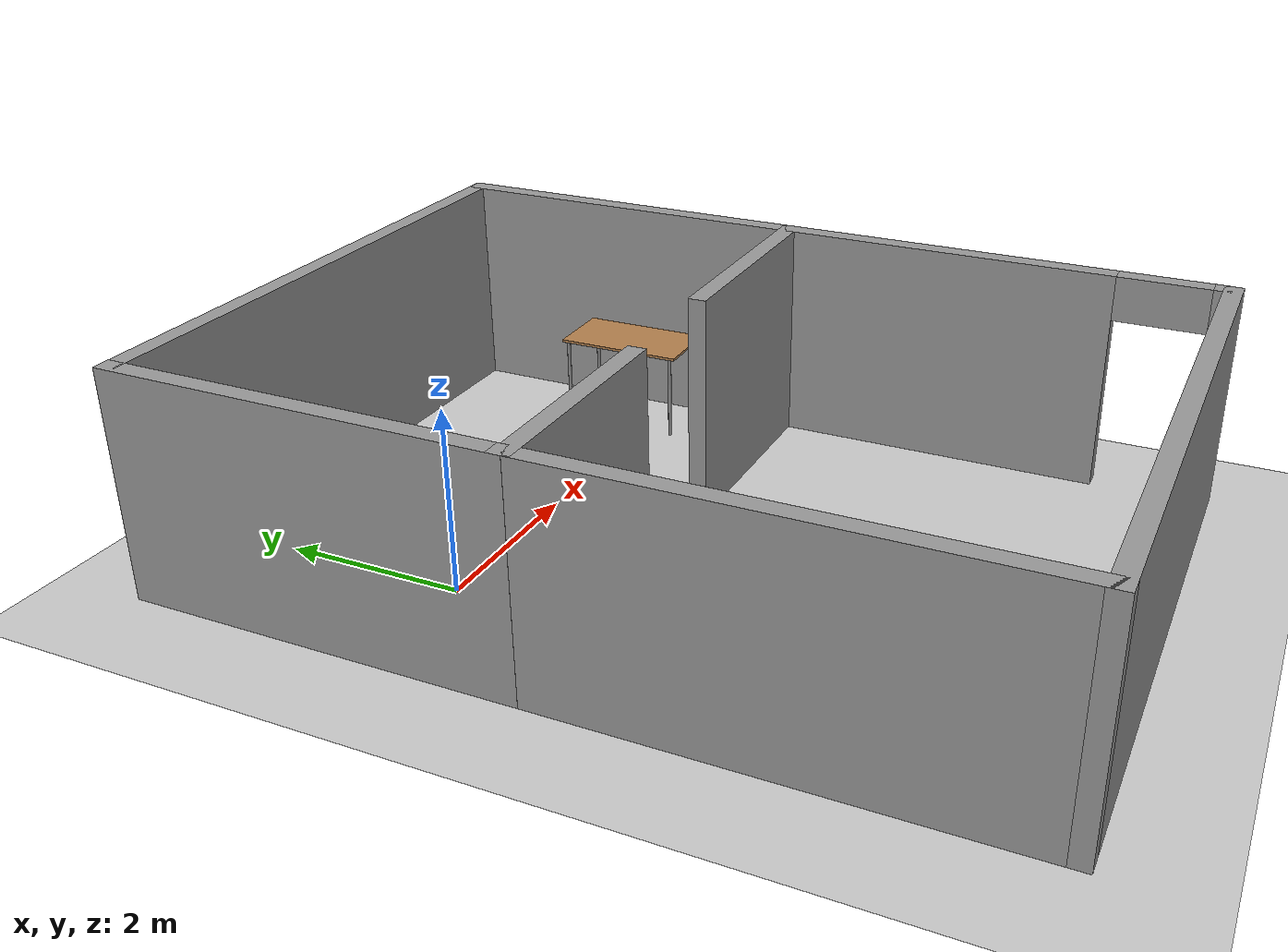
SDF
<sdf version="1.4">
 <world name="default">
  <model name="ground_plane">
   <static>1</static>
   <link name="link">
    <collision name="collision">
     <geometry><plane><normal>0 0 1</normal><size>100 100</size></plane></geometry>
     <surface><friction><ode><mu>100</mu><mu2>50</mu2></ode></friction></surface>
    </collision>
    <visual name="visual">
     <cast_shadows>0</cast_shadows>
     <geometry><plane><normal>0 0 1</normal><size>100 100</size></plane></geometry>
     <material>
      <script><uri>file://media/materials/scripts/gazebo.material</uri><name>Gazebo/Grey</name></script>
     </material>
    </visual>
    <velocity_decay><linear>0</linear><angular>0</angular></velocity_decay>
   </link>
  </model>
  <model name="upo.world">
   <link name="Wall_23">
    <pose>4.01723 -0.266341 0 0 -0 1.5708</pose>
    <visual name="Wall_23_Visual_0">
     <pose>-4.54348 0 1.25 0 -0 0</pose>
     <geometry><box><size>0.177799 0.2 2.5</size></box></geometry>
     <material>
      <script><uri>file://media/materials/scripts/gazebo.material</uri><name>Gazebo/Grey</name></script>
     </material>
    </visual>
    <collision name="Wall_23_Collision_0">
     <geometry><box><size>0.177799 0.2 2.5</size></box></geometry>
     <pose>-4.54348 0 1.25 0 -0 0</pose>
    </collision>
    <visual name="Wall_23_Visual_1">
     <pose>0.5889 0 1.25 0 -0 0</pose>
     <geometry><box><size>8.08695 0.2 2.5</size></box></geometry>
     <material>
      <script><uri>file://media/materials/scripts/gazebo.material</uri><name>Gazebo/Grey</name></script>
     </material>
    </visual>
    <collision name="Wall_23_Collision_1">
     <geometry><box><size>8.08695 0.2 2.5</size></box></geometry>
     <pose>0.5889 0 1.25 0 -0 0</pose>
    </collision>
    <visual name="Wall_23_Visual_2">
     <pose>-3.95458 0 2.25 0 -0 0</pose>
     <geometry><box><size>1 0.2 0.5</size></box></geometry>
     <material>
      <script><uri>file://media/materials/scripts/gazebo.material</uri><name>Gazebo/Grey</name></script>
     </material>
    </visual>
    <collision name="Wall_23_Collision_2">
     <geometry><box><size>1 0.2 0.5</size></box></geometry>
     <pose>-3.95458 0 2.25 0 -0 0</pose>
    </collision>
    <velocity_decay><linear>0</linear><angular>0</angular></velocity_decay>
   </link>
   <link name="Wall_27">
    <collision name="Wall_27_Collision">
     <geometry><box><size>2.64758 0.2 2.5</size></box></geometry>
     <pose>0 0 1.25 0 -0 0</pose>
    </collision>
    <visual name="Wall_27_Visual">
     <pose>0 0 1.25 0 -0 0</pose>
     <geometry><box><size>2.64758 0.2 2.5</size></box></geometry>
     <material>
      <script><uri>file://media/materials/scripts/gazebo.material</uri><name>Gazebo/Grey</name></script>
     </material>
    </visual>
    <velocity_decay><linear>0</linear><angular>0</angular></velocity_decay>
    <pose>2.76286 0.061184 0 0 -0 3.14159</pose>
   </link>
   <link name="Wall_31">
    <collision name="Wall_31_Collision">
     <geometry><box><size>6.55071 0.2 2.5</size></box></geometry>
     <pose>0 0 1.25 0 -0 0</pose>
    </collision>
    <visual name="Wall_31_Visual">
     <pose>0 0 1.25 0 -0 0</pose>
     <geometry><box><size>6.55071 0.2 2.5</size></box></geometry>
     <material>
      <script><uri>file://media/materials/scripts/gazebo.material</uri><name>Gazebo/Grey</name></script>
     </material>
    </visual>
    <velocity_decay><linear>0</linear><angular>0</angular></velocity_decay>
    <pose>0.836109 -4.91271 0 0 -0 3.14159</pose>
   </link>
   <link name="Wall_32">
    <collision name="Wall_32_Collision">
     <geometry><box><size>5.18636 0.2 2.5</size></box></geometry>
     <pose>0 0 1.25 0 -0 0</pose>
    </collision>
    <visual name="Wall_32_Visual">
     <pose>0 0 1.25 0 -0 0</pose>
     <geometry><box><size>5.18636 0.2 2.5</size></box></geometry>
     <material>
      <script><uri>file://media/materials/scripts/gazebo.material</uri><name>Gazebo/Grey</name></script>
     </material>
    </visual>
    <velocity_decay><linear>0</linear><angular>0</angular></velocity_decay>
    <pose>-2.33925 -2.41953 0 0 -0 1.5708</pose>
   </link>
   <link name="Wall_40">
    <collision name="Wall_40_Collision">
     <geometry><box><size>2.48229 0.2 2.5</size></box></geometry>
     <pose>0 0 1.25 0 -0 0</pose>
    </collision>
    <visual name="Wall_40_Visual">
     <pose>0 0 1.25 0 -0 0</pose>
     <geometry><box><size>2.48229 0.2 2.5</size></box></geometry>
     <material>
      <script><uri>file://media/materials/scripts/gazebo.material</uri><name>Gazebo/Grey</name></script>
     </material>
    </visual>
    <velocity_decay><linear>0</linear><angular>0</angular></velocity_decay>
    <pose>-1.18284 0.044501 0 0 -0 0</pose>
   </link>
   <link name="Wall_43">
    <collision name="Wall_43_Collision">
     <geometry><box><size>4.35525 0.2 2.5</size></box></geometry>
     <pose>0 0 1.25 0 -0 0</pose>
    </collision>
    <visual name="Wall_43_Visual">
     <pose>0 0 1.25 0 -0 0</pose>
     <geometry><box><size>4.35525 0.2 2.5</size></box></geometry>
     <material>
      <script><uri>file://media/materials/scripts/gazebo.material</uri><name>Gazebo/Grey</name></script>
     </material>
    </visual>
    <velocity_decay><linear>0</linear><angular>0</angular></velocity_decay>
    <pose>-2.33991 2.20081 0 0 -0 1.5708</pose>
   </link>
   <link name="Wall_45">
    <collision name="Wall_45_Collision">
     <geometry><box><size>6.4887 0.2 2.5</size></box></geometry>
     <pose>0 0 1.25 0 -0 0</pose>
    </collision>
    <visual name="Wall_45_Visual">
     <pose>0 0 1.25 0 -0 0</pose>
     <geometry><box><size>6.4887 0.2 2.5</size></box></geometry>
     <material>
      <script><uri>file://media/materials/scripts/gazebo.material</uri><name>Gazebo/Grey</name></script>
     </material>
    </visual>
    <velocity_decay><linear>0</linear><angular>0</angular></velocity_decay>
    <pose>0.85405 4.27844 0 0 -0 3.14159</pose>
   </link>
   <static>1</static>
   <pose>1 -1.5863 0 0 -0 0</pose>
  </model>
  <model name="table_0">
   <static>1</static>
   <link name="link">
    <collision name="surface">
     <pose>0 0 1 0 -0 0</pose>
     <geometry><box><size>1.5 0.8 0.03</size></box></geometry>
     <surface><friction><ode><mu>0.6</mu><mu2>0.6</mu2></ode></friction></surface>
    </collision>
    <visual name="visual1">
     <pose>0 0 1 0 -0 0</pose>
     <geometry><box><size>1.5 0.8 0.03</size></box></geometry>
     <material>
      <script><uri>file://media/materials/scripts/gazebo.material</uri><name>Gazebo/Wood</name></script>
     </material>
    </visual>
    <collision name="front_left_leg">
     <pose>0.68 0.38 0.5 0 -0 0</pose>
     <geometry><cylinder><radius>0.02</radius><length>1</length></cylinder></geometry>
    </collision>
    <visual name="front_left_leg">
     <pose>0.68 0.38 0.5 0 -0 0</pose>
     <geometry><cylinder><radius>0.02</radius><length>1</length></cylinder></geometry>
     <material>
      <script><uri>file://media/materials/scripts/gazebo.material</uri><name>Gazebo/Grey</name></script>
     </material>
    </visual>
    <collision name="front_right_leg">
     <pose>0.68 -0.38 0.5 0 -0 0</pose>
     <geometry><cylinder><radius>0.02</radius><length>1</length></cylinder></geometry>
    </collision>
    <visual name="front_right_leg">
     <pose>0.68 -0.38 0.5 0 -0 0</pose>
     <geometry><cylinder><radius>0.02</radius><length>1</length></cylinder></geometry>
     <material>
      <script><uri>file://media/materials/scripts/gazebo.material</uri><name>Gazebo/Grey</name></script>
     </material>
    </visual>
    <collision name="back_right_leg">
     <pose>-0.68 -0.38 0.5 0 -0 0</pose>
     <geometry><cylinder><radius>0.02</radius><length>1</length></cylinder></geometry>
    </collision>
    <visual name="back_right_leg">
     <pose>-0.68 -0.38 0.5 0 -0 0</pose>
     <geometry><cylinder><radius>0.02</radius><length>1</length></cylinder></geometry>
     <material>
      <script><uri>file://media/materials/scripts/gazebo.material</uri><name>Gazebo/Grey</name></script>
     </material>
    </visual>
    <collision name="back_left_leg">
     <pose>-0.68 0.38 0.5 0 -0 0</pose>
     <geometry><cylinder><radius>0.02</radius><length>1</length></cylinder></geometry>
    </collision>
    <visual name="back_left_leg">
     <pose>-0.68 0.38 0.5 0 -0 0</pose>
     <geometry><cylinder><radius>0.02</radius><length>1</length></cylinder></geometry>
     <material>
      <script><uri>file://media/materials/scripts/gazebo.material</uri><name>Gazebo/Grey</name></script>
     </material>
    </visual>
    <velocity_decay><linear>0</linear><angular>0</angular></velocity_decay>
   </link>
   <pose>-0.817184 0.212433 0 0 0 -1.56636</pose>
  </model>
  <model name="table_1">
   <static>1</static>
   <link name="link">
    <collision name="surface">
     <pose>0 0 1 0 -0 0</pose>
     <geometry><box><size>1.5 0.8 0.03</size></box></geometry>
     <surface><friction><ode><mu>0.6</mu><mu2>0.6</mu2></ode></friction></surface>
    </collision>
    <visual name="visual1">
     <pose>0 0 1 0 -0 0</pose>
     <geometry><box><size>1.5 0.8 0.03</size></box></geometry>
     <material>
      <script><uri>file://media/materials/scripts/gazebo.material</uri><name>Gazebo/Wood</name></script>
     </material>
    </visual>
    <collision name="front_left_leg">
     <pose>0.68 0.38 0.5 0 -0 0</pose>
     <geometry><cylinder><radius>0.02</radius><length>1</length></cylinder></geometry>
    </collision>
    <visual name="front_left_leg">
     <pose>0.68 0.38 0.5 0 -0 0</pose>
     <geometry><cylinder><radius>0.02</radius><length>1</length></cylinder></geometry>
     <material>
      <script><uri>file://media/materials/scripts/gazebo.material</uri><name>Gazebo/Grey</name></script>
     </material>
    </visual>
    <collision name="front_right_leg">
     <pose>0.68 -0.38 0.5 0 -0 0</pose>
     <geometry><cylinder><radius>0.02</radius><length>1</length></cylinder></geometry>
    </collision>
    <visual name="front_right_leg">
     <pose>0.68 -0.38 0.5 0 -0 0</pose>
     <geometry><cylinder><radius>0.02</radius><length>1</length></cylinder></geometry>
     <material>
      <script><uri>file://media/materials/scripts/gazebo.material</uri><name>Gazebo/Grey</name></script>
     </material>
    </visual>
    <collision name="back_right_leg">
     <pose>-0.68 -0.38 0.5 0 -0 0</pose>
     <geometry><cylinder><radius>0.02</radius><length>1</length></cylinder></geometry>
    </collision>
    <visual name="back_right_leg">
     <pose>-0.68 -0.38 0.5 0 -0 0</pose>
     <geometry><cylinder><radius>0.02</radius><length>1</length></cylinder></geometry>
     <material>
      <script><uri>file://media/materials/scripts/gazebo.material</uri><name>Gazebo/Grey</name></script>
     </material>
    </visual>
    <collision name="back_left_leg">
     <pose>-0.68 0.38 0.5 0 -0 0</pose>
     <geometry><cylinder><radius>0.02</radius><length>1</length></cylinder></geometry>
    </collision>
    <visual name="back_left_leg">
     <pose>-0.68 0.38 0.5 0 -0 0</pose>
     <geometry><cylinder><radius>0.02</radius><length>1</length></cylinder></geometry>
     <material>
      <script><uri>file://media/materials/scripts/gazebo.material</uri><name>Gazebo/Grey</name></script>
     </material>
    </visual>
    <velocity_decay><linear>0</linear><angular>0</angular></velocity_decay>
   </link>
   <pose>0.316779 0.957156 0 0 -0 0</pose>
  </model>
  <model name="table_4">
   <static>1</static>
   <link name="link">
    <collision name="surface">
     <pose>0 0 1 0 -0 0</pose>
     <geometry><box><size>1.5 0.8 0.03</size></box></geometry>
     <surface><friction><ode><mu>0.6</mu><mu2>0.6</mu2></ode></friction></surface>
    </collision>
    <visual name="visual1">
     <pose>0 0 1 0 -0 0</pose>
     <geometry><box><size>1.5 0.8 0.03</size></box></geometry>
     <material>
      <script><uri>file://media/materials/scripts/gazebo.material</uri><name>Gazebo/Wood</name></script>
     </material>
    </visual>
    <collision name="front_left_leg">
     <pose>0.68 0.38 0.5 0 -0 0</pose>
     <geometry><cylinder><radius>0.02</radius><length>1</length></cylinder></geometry>
    </collision>
    <visual name="front_left_leg">
     <pose>0.68 0.38 0.5 0 -0 0</pose>
     <geometry><cylinder><radius>0.02</radius><length>1</length></cylinder></geometry>
     <material>
      <script><uri>file://media/materials/scripts/gazebo.material</uri><name>Gazebo/Grey</name></script>
     </material>
    </visual>
    <collision name="front_right_leg">
     <pose>0.68 -0.38 0.5 0 -0 0</pose>
     <geometry><cylinder><radius>0.02</radius><length>1</length></cylinder></geometry>
    </collision>
    <visual name="front_right_leg">
     <pose>0.68 -0.38 0.5 0 -0 0</pose>
     <geometry><cylinder><radius>0.02</radius><length>1</length></cylinder></geometry>
     <material>
      <script><uri>file://media/materials/scripts/gazebo.material</uri><name>Gazebo/Grey</name></script>
     </material>
    </visual>
    <collision name="back_right_leg">
     <pose>-0.68 -0.38 0.5 0 -0 0</pose>
     <geometry><cylinder><radius>0.02</radius><length>1</length></cylinder></geometry>
    </collision>
    <visual name="back_right_leg">
     <pose>-0.68 -0.38 0.5 0 -0 0</pose>
     <geometry><cylinder><radius>0.02</radius><length>1</length></cylinder></geometry>
     <material>
      <script><uri>file://media/materials/scripts/gazebo.material</uri><name>Gazebo/Grey</name></script>
     </material>
    </visual>
    <collision name="back_left_leg">
     <pose>-0.68 0.38 0.5 0 -0 0</pose>
     <geometry><cylinder><radius>0.02</radius><length>1</length></cylinder></geometry>
    </collision>
    <visual name="back_left_leg">
     <pose>-0.68 0.38 0.5 0 -0 0</pose>
     <geometry><cylinder><radius>0.02</radius><length>1</length></cylinder></geometry>
     <material>
      <script><uri>file://media/materials/scripts/gazebo.material</uri><name>Gazebo/Grey</name></script>
     </material>
    </visual>
    <velocity_decay><linear>0</linear><angular>0</angular></velocity_decay>
   </link>
   <pose>4.4848 0.292341 0 0 -0 1.57838</pose>
  </model>
  <model name="unit_box_1">
   <pose>-0.716151 -5.89711 0.5 0 -0 0</pose>
   <link name="link">
    <inertial>
     <mass>1</mass>
     <inertia><ixx>1</ixx><ixy>0</ixy><ixz>0</ixz><iyy>1</iyy><iyz>0</iyz><izz>1</izz></inertia>
    </inertial>
    <collision name="collision"><geometry><box><size>1 1 1</size></box></geometry></collision>
    <visual name="visual">
     <geometry><box><size>1 1 1</size></box></geometry>
     <material>
      <script><uri>file://media/materials/scripts/gazebo.material</uri><name>Gazebo/Grey</name></script>
     </material>
    </visual>
    <velocity_decay><linear>0</linear><angular>0</angular></velocity_decay>
   </link>
   <static>0</static>
  </model>
 </world>
</sdf>
